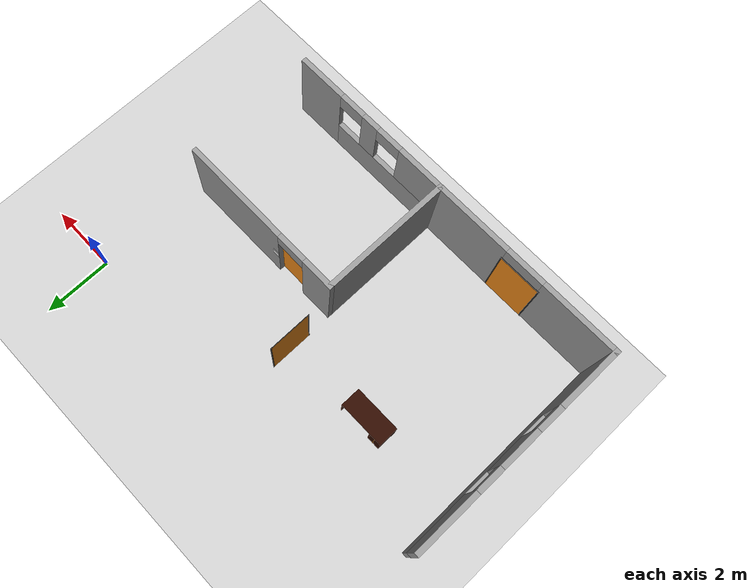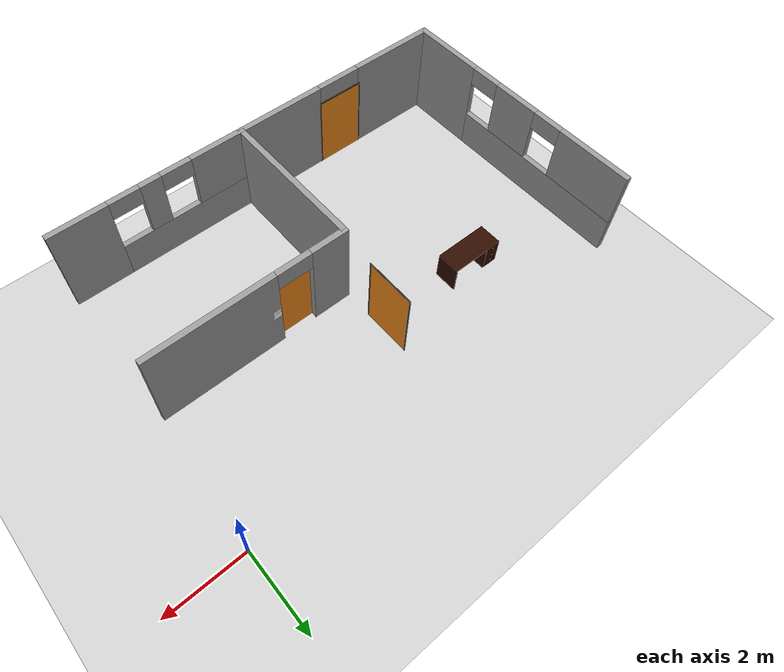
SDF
<sdf version="1.6">
 <world name="default">
  <model name="ground_plane">
   <static>1</static>
   <link name="link">
    <collision name="collision">
     <geometry><plane><normal>0 0 1</normal><size>100 100</size></plane></geometry>
     <surface><friction><ode><mu>100</mu><mu2>50</mu2></ode></friction></surface>
    </collision>
    <visual name="visual">
     <cast_shadows>0</cast_shadows>
     <geometry><plane><normal>0 0 1</normal><size>100 100</size></plane></geometry>
     <material>
      <script><uri>file://media/materials/scripts/gazebo.material</uri><name>Gazebo/Grey</name></script>
     </material>
    </visual>
   </link>
  </model>
  <model name="three_drawer_desk_clone_0">
   <static>1</static>
   <link name="three_drawer_desk">
    <collision name="three_drawer_desk">
     <geometry><mesh><uri>model://three_drawer_desk/meshes/model.dae</uri></mesh></geometry>
    </collision>
    <visual name="three_drawer_desk_mesh">
     <geometry><mesh><uri>model://three_drawer_desk/meshes/model.dae</uri></mesh></geometry>
    </visual>
   </link>
   <pose>-8.08485 -2.2155 0 0 -0 0</pose>
  </model>
  <model name="room_door">
   <link name="base_link">
    <inertial>
     <pose>0 0 1.00051 0 -0 0</pose>
     <mass>2001</mass>
     <inertia><ixx>797.85</ixx><ixy>0</ixy><ixz>0</ixz><iyy>4.0501</iyy><iyz>0</iyz><izz>796.8</izz></inertia>
    </inertial>
    <collision name="base_link_fixed_joint_lump__top_post_collision">
     <pose>0 0 2.025 0 -0 0</pose>
     <geometry><box><size>0.01 1.3 0.05</size></box></geometry>
    </collision>
    <collision name="base_link_fixed_joint_lump__left_post_collision_1">
     <pose>0 -0.63 1 0 -0 0</pose>
     <geometry><box><size>0.01 0.04 2</size></box></geometry>
    </collision>
    <collision name="base_link_fixed_joint_lump__right_post_collision_2">
     <pose>0 0.63 1 0 -0 0</pose>
     <geometry><box><size>0.01 0.04 2</size></box></geometry>
    </collision>
    <visual name="base_link_fixed_joint_lump__top_post_visual">
     <pose>0 0 2.025 0 -0 0</pose>
     <geometry><box><size>0.01 1.3 0.05</size></box></geometry>
     <material>
      <script><name>Gazebo/Black</name><uri>file://media/materials/scripts/gazebo.material</uri></script>
     </material>
    </visual>
    <visual name="base_link_fixed_joint_lump__left_post_visual_1">
     <pose>0 -0.63 1 0 -0 0</pose>
     <geometry><box><size>0.01 0.04 2</size></box></geometry>
     <material>
      <script><name>Gazebo/Black</name><uri>file://media/materials/scripts/gazebo.material</uri></script>
     </material>
    </visual>
    <visual name="base_link_fixed_joint_lump__right_post_visual_2">
     <pose>0 0.63 1 0 -0 0</pose>
     <geometry><box><size>0.01 0.04 2</size></box></geometry>
     <material>
      <script><name>Gazebo/Black</name><uri>file://media/materials/scripts/gazebo.material</uri></script>
     </material>
    </visual>
   </link>
   <link name="door_front">
    <pose>0.005 0.61 1 0 -0 0</pose>
    <inertial>
     <mass>1</mass>
     <inertia><ixx>1</ixx><ixy>0</ixy><ixz>0</ixz><iyy>1</iyy><iyz>0</iyz><izz>1</izz></inertia>
    </inertial>
    <collision name="door_front_collision">
     <pose>-0.005 -0.61 0.005 0 -0 0</pose>
     <geometry><box><size>0.01 1.22 1.99</size></box></geometry>
    </collision>
    <visual name="door_front_visual">
     <pose>-0.005 -0.61 0.005 0 -0 0</pose>
     <geometry><box><size>0.01 1.22 1.99</size></box></geometry>
     <material>
      <script><name>Gazebo/Orange</name><uri>file://media/materials/scripts/gazebo.material</uri></script>
     </material>
    </visual>
   </link>
   <joint name="door_front_to_right_post" type="revolute">
    <child>door_front</child>
    <parent>base_link</parent>
    <axis>
     <xyz>0 0 1</xyz>
     <limit><lower>0</lower><upper>3.14</upper><effort>1000</effort><velocity>100</velocity></limit>
     <dynamics>
      <damping>0.5</damping>
      <friction>0</friction>
      <spring_reference>0</spring_reference>
      <spring_stiffness>0</spring_stiffness>
     </dynamics>
     <use_parent_model_frame>0</use_parent_model_frame>
    </axis>
   </joint>
   <pose>-5.34333 -2.04893 -0 -1e-06 -0 3.14133</pose>
  </model>
  <model name="room_door_2">
   <link name="base_link">
    <inertial>
     <pose>0 0 1.00051 0 -0 0</pose>
     <mass>2001</mass>
     <inertia><ixx>464.85</ixx><ixy>0</ixy><ixz>0</ixz><iyy>4.0501</iyy><iyz>0</iyz><izz>463.8</izz></inertia>
    </inertial>
    <collision name="base_link_fixed_joint_lump__top_post_collision">
     <pose>0 0 2.025 0 -0 0</pose>
     <geometry><box><size>0.01 1 0.05</size></box></geometry>
    </collision>
    <collision name="base_link_fixed_joint_lump__left_post_collision_1">
     <pose>0 -0.48 1 0 -0 0</pose>
     <geometry><box><size>0.01 0.04 2</size></box></geometry>
    </collision>
    <collision name="base_link_fixed_joint_lump__right_post_collision_2">
     <pose>0 0.48 1 0 -0 0</pose>
     <geometry><box><size>0.01 0.04 2</size></box></geometry>
    </collision>
    <visual name="base_link_fixed_joint_lump__top_post_visual">
     <pose>0 0 2.025 0 -0 0</pose>
     <geometry><box><size>0.01 1 0.05</size></box></geometry>
     <material>
      <script><name>Gazebo/Black</name><uri>file://media/materials/scripts/gazebo.material</uri></script>
     </material>
    </visual>
    <visual name="base_link_fixed_joint_lump__left_post_visual_1">
     <pose>0 -0.48 1 0 -0 0</pose>
     <geometry><box><size>0.01 0.04 2</size></box></geometry>
     <material>
      <script><name>Gazebo/Black</name><uri>file://media/materials/scripts/gazebo.material</uri></script>
     </material>
    </visual>
    <visual name="base_link_fixed_joint_lump__right_post_visual_2">
     <pose>0 0.48 1 0 -0 0</pose>
     <geometry><box><size>0.01 0.04 2</size></box></geometry>
     <material>
      <script><name>Gazebo/Black</name><uri>file://media/materials/scripts/gazebo.material</uri></script>
     </material>
    </visual>
   </link>
   <link name="door_front">
    <pose>0.005 0.46 1 0 -0 0</pose>
    <inertial>
     <mass>1</mass>
     <inertia><ixx>1</ixx><ixy>0</ixy><ixz>0</ixz><iyy>1</iyy><iyz>0</iyz><izz>1</izz></inertia>
    </inertial>
    <collision name="door_front_collision">
     <pose>-0.005 -0.46 0.005 0 -0 0</pose>
     <geometry><box><size>0.01 0.92 1.99</size></box></geometry>
    </collision>
    <visual name="door_front_visual">
     <pose>-0.005 -0.46 0.005 0 -0 0</pose>
     <geometry><box><size>0.01 0.92 1.99</size></box></geometry>
     <material>
      <script><name>Gazebo/Orange</name><uri>file://media/materials/scripts/gazebo.material</uri></script>
     </material>
    </visual>
   </link>
   <joint name="door_front_to_right_post" type="revolute">
    <child>door_front</child>
    <parent>base_link</parent>
    <axis>
     <xyz>0 0 1</xyz>
     <limit><lower>0</lower><upper>3.14</upper><effort>1000</effort><velocity>100</velocity></limit>
     <dynamics>
      <damping>0.5</damping>
      <friction>0</friction>
      <spring_reference>0</spring_reference>
      <spring_stiffness>0</spring_stiffness>
     </dynamics>
     <use_parent_model_frame>0</use_parent_model_frame>
    </axis>
   </joint>
   <pose>-3.88747 -3.55038 -0 1e-06 1e-06 -1.57069</pose>
  </model>
  <model name="room_door_6">
   <link name="base_link">
    <inertial>
     <pose>0 0 1.00051 0 -0 0</pose>
     <mass>2001</mass>
     <inertia><ixx>797.85</ixx><ixy>0</ixy><ixz>0</ixz><iyy>4.0501</iyy><iyz>0</iyz><izz>796.8</izz></inertia>
    </inertial>
    <collision name="base_link_fixed_joint_lump__top_post_collision">
     <pose>0 0 2.025 0 -0 0</pose>
     <geometry><box><size>0.01 1.3 0.05</size></box></geometry>
    </collision>
    <collision name="base_link_fixed_joint_lump__left_post_collision_1">
     <pose>0 -0.63 1 0 -0 0</pose>
     <geometry><box><size>0.01 0.04 2</size></box></geometry>
    </collision>
    <collision name="base_link_fixed_joint_lump__right_post_collision_2">
     <pose>0 0.63 1 0 -0 0</pose>
     <geometry><box><size>0.01 0.04 2</size></box></geometry>
    </collision>
    <visual name="base_link_fixed_joint_lump__top_post_visual">
     <pose>0 0 2.025 0 -0 0</pose>
     <geometry><box><size>0.01 1.3 0.05</size></box></geometry>
     <material>
      <script><name>Gazebo/Black</name><uri>file://media/materials/scripts/gazebo.material</uri></script>
     </material>
    </visual>
    <visual name="base_link_fixed_joint_lump__left_post_visual_1">
     <pose>0 -0.63 1 0 -0 0</pose>
     <geometry><box><size>0.01 0.04 2</size></box></geometry>
     <material>
      <script><name>Gazebo/Black</name><uri>file://media/materials/scripts/gazebo.material</uri></script>
     </material>
    </visual>
    <visual name="base_link_fixed_joint_lump__right_post_visual_2">
     <pose>0 0.63 1 0 -0 0</pose>
     <geometry><box><size>0.01 0.04 2</size></box></geometry>
     <material>
      <script><name>Gazebo/Black</name><uri>file://media/materials/scripts/gazebo.material</uri></script>
     </material>
    </visual>
   </link>
   <link name="door_front">
    <pose>0.005 0.61 1 0 -0 0</pose>
    <inertial>
     <mass>1</mass>
     <inertia><ixx>1</ixx><ixy>0</ixy><ixz>0</ixz><iyy>1</iyy><iyz>0</iyz><izz>1</izz></inertia>
    </inertial>
    <collision name="door_front_collision">
     <pose>-0.005 -0.61 0.005 0 -0 0</pose>
     <geometry><box><size>0.01 1.22 1.99</size></box></geometry>
    </collision>
    <visual name="door_front_visual">
     <pose>-0.005 -0.61 0.005 0 -0 0</pose>
     <geometry><box><size>0.01 1.22 1.99</size></box></geometry>
     <material>
      <script><name>Gazebo/Orange</name><uri>file://media/materials/scripts/gazebo.material</uri></script>
     </material>
    </visual>
   </link>
   <joint name="door_front_to_right_post" type="revolute">
    <child>door_front</child>
    <parent>base_link</parent>
    <axis>
     <xyz>0 0 1</xyz>
     <limit><lower>0</lower><upper>3.14</upper><effort>1000</effort><velocity>100</velocity></limit>
     <dynamics>
      <damping>0.5</damping>
      <friction>0</friction>
      <spring_reference>0</spring_reference>
      <spring_stiffness>0</spring_stiffness>
     </dynamics>
     <use_parent_model_frame>0</use_parent_model_frame>
    </axis>
   </joint>
   <pose>-8.19194 -7.24015 -5e-06 1e-06 1e-06 1.57065</pose>
  </model>
  <model name="hospital_walls">
   <link name="Wall_49">
    <pose>-5.275 -5.35 0 0 0 -1.5708</pose>
    <visual name="Wall_49_Visual">
     <pose>0 0 1.25 0 -0 0</pose>
     <geometry><box><size>4 0.15 2.5</size></box></geometry>
     <material>
      <script><uri>file://media/materials/scripts/gazebo.material</uri><name>Gazebo/Grey</name></script>
      <ambient>1 1 1 1</ambient>
      <shader type="pixel"/>
     </material>
     <meta><layer>0</layer></meta>
    </visual>
    <collision name="Wall_49_Collision">
     <pose>0 0 1.25 0 -0 0</pose>
     <geometry><box><size>4 0.15 2.5</size></box></geometry>
     <surface>
      <friction>
       <ode><mu>1</mu><mu2>1</mu2><fdir1>0 0 0</fdir1><slip1>0</slip1><slip2>0</slip2></ode>
       <torsional>
        <coefficient>1</coefficient>
        <patch_radius>0</patch_radius>
        <surface_radius>0</surface_radius>
        <use_patch_radius>1</use_patch_radius>
        <ode><slip>0</slip></ode>
       </torsional>
      </friction>
      <bounce><restitution_coefficient>0</restitution_coefficient><threshold>1e+06</threshold></bounce>
      <contact>
       <collide_without_contact>0</collide_without_contact>
       <collide_without_contact_bitmask>1</collide_without_contact_bitmask>
       <collide_bitmask>1</collide_bitmask>
       <ode>
        <soft_cfm>0</soft_cfm>
        <soft_erp>0.2</soft_erp>
        <kp>1e+13</kp>
        <kd>1</kd>
        <max_vel>0.01</max_vel>
        <min_depth>0</min_depth>
       </ode>
       <bullet>
        <split_impulse>1</split_impulse>
        <split_impulse_penetration_threshold>-0.01</split_impulse_penetration_threshold>
        <soft_cfm>0</soft_cfm>
        <soft_erp>0.2</soft_erp>
        <kp>1e+13</kp>
        <kd>1</kd>
       </bullet>
      </contact>
     </surface>
    </collision>
   </link>
   <link name="Wall_51">
    <pose>-11.125 -3.925 0 0 -0 1.5708</pose>
    <inertial>
     <mass>1</mass>
     <inertia><ixx>1</ixx><ixy>0</ixy><ixz>0</ixz><iyy>1</iyy><iyz>0</iyz><izz>1</izz></inertia>
    </inertial>
    <visual name="Wall_51_Visual_0">
     <pose>-2.425 0 1.25 0 -0 0</pose>
     <geometry><box><size>2 0.15 2.5</size></box></geometry>
     <material>
      <script><uri>file://media/materials/scripts/gazebo.material</uri><name>Gazebo/Grey</name></script>
      <ambient>1 1 1 1</ambient>
      <shader type="vertex"><normal_map>__default__</normal_map></shader>
      <diffuse>0.7 0.7 0.7 1</diffuse>
      <specular>0.01 0.01 0.01 1</specular>
      <emissive>0 0 0 1</emissive>
     </material>
     <meta><layer>0</layer></meta>
    </visual>
    <visual name="Wall_51_Visual_3">
     <pose>2.425 0 1.75 0 -0 0</pose>
     <geometry><box><size>2 0.15 1.5</size></box></geometry>
     <material>
      <script><uri>file://media/materials/scripts/gazebo.material</uri><name>Gazebo/Grey</name></script>
      <ambient>1 1 1 1</ambient>
      <shader type="vertex"><normal_map>__default__</normal_map></shader>
      <diffuse>0.7 0.7 0.7 1</diffuse>
      <specular>0.01 0.01 0.01 1</specular>
      <emissive>0 0 0 1</emissive>
     </material>
     <meta><layer>0</layer></meta>
    </visual>
    <visual name="Wall_51_Visual_1">
     <pose>1 0 0.5 0 -0 0</pose>
     <geometry><box><size>4.85 0.15 1</size></box></geometry>
     <material>
      <script><uri>file://media/materials/scripts/gazebo.material</uri><name>Gazebo/Grey</name></script>
      <ambient>1 1 1 1</ambient>
      <shader type="vertex"><normal_map>__default__</normal_map></shader>
      <diffuse>0.7 0.7 0.7 1</diffuse>
      <specular>0.01 0.01 0.01 1</specular>
      <emissive>0 0 0 1</emissive>
     </material>
     <meta><layer>0</layer></meta>
    </visual>
    <visual name="Wall_51_Visual_5">
     <pose>1.025 0 2.25 0 -0 0</pose>
     <geometry><box><size>0.8 0.15 0.5</size></box></geometry>
     <material>
      <script><uri>file://media/materials/scripts/gazebo.material</uri><name>Gazebo/Grey</name></script>
      <ambient>1 1 1 1</ambient>
      <shader type="vertex"><normal_map>__default__</normal_map></shader>
      <diffuse>0.7 0.7 0.7 1</diffuse>
      <specular>0.01 0.01 0.01 1</specular>
      <emissive>0 0 0 1</emissive>
     </material>
     <meta><layer>0</layer></meta>
    </visual>
    <visual name="Wall_51_Visual_2">
     <pose>0 0 1.75 0 -0 0</pose>
     <geometry><box><size>1.25 0.15 1.5</size></box></geometry>
     <material>
      <script><uri>file://media/materials/scripts/gazebo.material</uri><name>Gazebo/Grey</name></script>
      <ambient>1 1 1 1</ambient>
      <shader type="vertex"><normal_map>__default__</normal_map></shader>
      <diffuse>0.7 0.7 0.7 1</diffuse>
      <specular>0.01 0.01 0.01 1</specular>
      <emissive>0 0 0 1</emissive>
     </material>
     <meta><layer>0</layer></meta>
    </visual>
    <visual name="Wall_51_Visual_4">
     <pose>-1.025 0 2.25 0 -0 0</pose>
     <geometry><box><size>0.8 0.15 0.5</size></box></geometry>
     <material>
      <script><uri>file://media/materials/scripts/gazebo.material</uri><name>Gazebo/Grey</name></script>
      <ambient>1 1 1 1</ambient>
      <shader type="vertex"><normal_map>__default__</normal_map></shader>
      <diffuse>0.7 0.7 0.7 1</diffuse>
      <specular>0.01 0.01 0.01 1</specular>
      <emissive>0 0 0 1</emissive>
     </material>
     <meta><layer>0</layer></meta>
    </visual>
    <collision name="Wall_51_Collision_1">
     <pose>1 0 0.5 0 -0 0</pose>
     <geometry><box><size>4.85 0.15 1</size></box></geometry>
     <surface>
      <friction>
       <ode><mu>1</mu><mu2>1</mu2><fdir1>0 0 0</fdir1><slip1>0</slip1><slip2>0</slip2></ode>
       <torsional>
        <coefficient>1</coefficient>
        <patch_radius>0</patch_radius>
        <surface_radius>0</surface_radius>
        <use_patch_radius>1</use_patch_radius>
        <ode><slip>0</slip></ode>
       </torsional>
      </friction>
      <bounce><restitution_coefficient>0</restitution_coefficient><threshold>1e+06</threshold></bounce>
      <contact>
       <collide_without_contact>0</collide_without_contact>
       <collide_without_contact_bitmask>1</collide_without_contact_bitmask>
       <collide_bitmask>1</collide_bitmask>
       <ode>
        <soft_cfm>0</soft_cfm>
        <soft_erp>0.2</soft_erp>
        <kp>1e+13</kp>
        <kd>1</kd>
        <max_vel>0.01</max_vel>
        <min_depth>0</min_depth>
       </ode>
       <bullet>
        <split_impulse>1</split_impulse>
        <split_impulse_penetration_threshold>-0.01</split_impulse_penetration_threshold>
        <soft_cfm>0</soft_cfm>
        <soft_erp>0.2</soft_erp>
        <kp>1e+13</kp>
        <kd>1</kd>
       </bullet>
      </contact>
     </surface>
    </collision>
    <collision name="Wall_51_Collision_3">
     <pose>2.425 0 1.75 0 -0 0</pose>
     <geometry><box><size>2 0.15 1.5</size></box></geometry>
     <surface>
      <friction>
       <ode><mu>1</mu><mu2>1</mu2><fdir1>0 0 0</fdir1><slip1>0</slip1><slip2>0</slip2></ode>
       <torsional>
        <coefficient>1</coefficient>
        <patch_radius>0</patch_radius>
        <surface_radius>0</surface_radius>
        <use_patch_radius>1</use_patch_radius>
        <ode><slip>0</slip></ode>
       </torsional>
      </friction>
      <bounce><restitution_coefficient>0</restitution_coefficient><threshold>1e+06</threshold></bounce>
      <contact>
       <collide_without_contact>0</collide_without_contact>
       <collide_without_contact_bitmask>1</collide_without_contact_bitmask>
       <collide_bitmask>1</collide_bitmask>
       <ode>
        <soft_cfm>0</soft_cfm>
        <soft_erp>0.2</soft_erp>
        <kp>1e+13</kp>
        <kd>1</kd>
        <max_vel>0.01</max_vel>
        <min_depth>0</min_depth>
       </ode>
       <bullet>
        <split_impulse>1</split_impulse>
        <split_impulse_penetration_threshold>-0.01</split_impulse_penetration_threshold>
        <soft_cfm>0</soft_cfm>
        <soft_erp>0.2</soft_erp>
        <kp>1e+13</kp>
        <kd>1</kd>
       </bullet>
      </contact>
     </surface>
    </collision>
    <collision name="Wall_51_Collision_2">
     <pose>0 0 1.75 0 -0 0</pose>
     <geometry><box><size>1.25 0.15 1.5</size></box></geometry>
     <surface>
      <friction>
       <ode><mu>1</mu><mu2>1</mu2><fdir1>0 0 0</fdir1><slip1>0</slip1><slip2>0</slip2></ode>
       <torsional>
        <coefficient>1</coefficient>
        <patch_radius>0</patch_radius>
        <surface_radius>0</surface_radius>
        <use_patch_radius>1</use_patch_radius>
        <ode><slip>0</slip></ode>
       </torsional>
      </friction>
      <bounce><restitution_coefficient>0</restitution_coefficient><threshold>1e+06</threshold></bounce>
      <contact>
       <collide_without_contact>0</collide_without_contact>
       <collide_without_contact_bitmask>1</collide_without_contact_bitmask>
       <collide_bitmask>1</collide_bitmask>
       <ode>
        <soft_cfm>0</soft_cfm>
        <soft_erp>0.2</soft_erp>
        <kp>1e+13</kp>
        <kd>1</kd>
        <max_vel>0.01</max_vel>
        <min_depth>0</min_depth>
       </ode>
       <bullet>
        <split_impulse>1</split_impulse>
        <split_impulse_penetration_threshold>-0.01</split_impulse_penetration_threshold>
        <soft_cfm>0</soft_cfm>
        <soft_erp>0.2</soft_erp>
        <kp>1e+13</kp>
        <kd>1</kd>
       </bullet>
      </contact>
     </surface>
    </collision>
    <collision name="Wall_51_Collision_0">
     <pose>-2.425 0 1.25 0 -0 0</pose>
     <geometry><box><size>2 0.15 2.5</size></box></geometry>
     <surface>
      <friction>
       <ode><mu>1</mu><mu2>1</mu2><fdir1>0 0 0</fdir1><slip1>0</slip1><slip2>0</slip2></ode>
       <torsional>
        <coefficient>1</coefficient>
        <patch_radius>0</patch_radius>
        <surface_radius>0</surface_radius>
        <use_patch_radius>1</use_patch_radius>
        <ode><slip>0</slip></ode>
       </torsional>
      </friction>
      <bounce><restitution_coefficient>0</restitution_coefficient><threshold>1e+06</threshold></bounce>
      <contact>
       <collide_without_contact>0</collide_without_contact>
       <collide_without_contact_bitmask>1</collide_without_contact_bitmask>
       <collide_bitmask>1</collide_bitmask>
       <ode>
        <soft_cfm>0</soft_cfm>
        <soft_erp>0.2</soft_erp>
        <kp>1e+13</kp>
        <kd>1</kd>
        <max_vel>0.01</max_vel>
        <min_depth>0</min_depth>
       </ode>
       <bullet>
        <split_impulse>1</split_impulse>
        <split_impulse_penetration_threshold>-0.01</split_impulse_penetration_threshold>
        <soft_cfm>0</soft_cfm>
        <soft_erp>0.2</soft_erp>
        <kp>1e+13</kp>
        <kd>1</kd>
       </bullet>
      </contact>
     </surface>
    </collision>
    <collision name="Wall_51_Collision_5">
     <pose>1.025 0 2.25 0 -0 0</pose>
     <geometry><box><size>0.8 0.15 0.5</size></box></geometry>
     <surface>
      <friction>
       <ode><mu>1</mu><mu2>1</mu2><fdir1>0 0 0</fdir1><slip1>0</slip1><slip2>0</slip2></ode>
       <torsional>
        <coefficient>1</coefficient>
        <patch_radius>0</patch_radius>
        <surface_radius>0</surface_radius>
        <use_patch_radius>1</use_patch_radius>
        <ode><slip>0</slip></ode>
       </torsional>
      </friction>
      <bounce><restitution_coefficient>0</restitution_coefficient><threshold>1e+06</threshold></bounce>
      <contact>
       <collide_without_contact>0</collide_without_contact>
       <collide_without_contact_bitmask>1</collide_without_contact_bitmask>
       <collide_bitmask>1</collide_bitmask>
       <ode>
        <soft_cfm>0</soft_cfm>
        <soft_erp>0.2</soft_erp>
        <kp>1e+13</kp>
        <kd>1</kd>
        <max_vel>0.01</max_vel>
        <min_depth>0</min_depth>
       </ode>
       <bullet>
        <split_impulse>1</split_impulse>
        <split_impulse_penetration_threshold>-0.01</split_impulse_penetration_threshold>
        <soft_cfm>0</soft_cfm>
        <soft_erp>0.2</soft_erp>
        <kp>1e+13</kp>
        <kd>1</kd>
       </bullet>
      </contact>
     </surface>
    </collision>
    <collision name="Wall_51_Collision_4">
     <pose>-1.025 0 2.25 0 -0 0</pose>
     <geometry><box><size>0.8 0.15 0.5</size></box></geometry>
     <surface>
      <friction>
       <ode><mu>1</mu><mu2>1</mu2><fdir1>0 0 0</fdir1><slip1>0</slip1><slip2>0</slip2></ode>
       <torsional>
        <coefficient>1</coefficient>
        <patch_radius>0</patch_radius>
        <surface_radius>0</surface_radius>
        <use_patch_radius>1</use_patch_radius>
        <ode><slip>0</slip></ode>
       </torsional>
      </friction>
      <bounce><restitution_coefficient>0</restitution_coefficient><threshold>1e+06</threshold></bounce>
      <contact>
       <collide_without_contact>0</collide_without_contact>
       <collide_without_contact_bitmask>1</collide_without_contact_bitmask>
       <collide_bitmask>1</collide_bitmask>
       <ode>
        <soft_cfm>0</soft_cfm>
        <soft_erp>0.2</soft_erp>
        <kp>1e+13</kp>
        <kd>1</kd>
        <max_vel>0.01</max_vel>
        <min_depth>0</min_depth>
       </ode>
       <bullet>
        <split_impulse>1</split_impulse>
        <split_impulse_penetration_threshold>-0.01</split_impulse_penetration_threshold>
        <soft_cfm>0</soft_cfm>
        <soft_erp>0.2</soft_erp>
        <kp>1e+13</kp>
        <kd>1</kd>
       </bullet>
      </contact>
     </surface>
    </collision>
   </link>
   <link name="Wall_53">
    <pose>-2.775 -7.275 0 0 -0 3.14159</pose>
    <inertial>
     <mass>1</mass>
     <inertia><ixx>1</ixx><ixy>0</ixy><ixz>0</ixz><iyy>1</iyy><iyz>0</iyz><izz>1</izz></inertia>
    </inertial>
    <visual name="Wall_53_Visual_2">
     <pose>0 0 1.75 0 -0 0</pose>
     <geometry><box><size>0.55 0.15 1.5</size></box></geometry>
     <material>
      <script><uri>file://media/materials/scripts/gazebo.material</uri><name>Gazebo/Grey</name></script>
      <ambient>1 1 1 1</ambient>
      <shader type="vertex"><normal_map>__default__</normal_map></shader>
      <diffuse>0.7 0.7 0.7 1</diffuse>
      <specular>0.01 0.01 0.01 1</specular>
      <emissive>0 0 0 1</emissive>
     </material>
     <meta><layer>0</layer></meta>
    </visual>
    <visual name="Wall_53_Visual_1">
     <pose>0.75 0 0.5 0 -0 0</pose>
     <geometry><box><size>3.65 0.15 1</size></box></geometry>
     <material>
      <script><uri>file://media/materials/scripts/gazebo.material</uri><name>Gazebo/Grey</name></script>
      <ambient>1 1 1 1</ambient>
      <shader type="vertex"><normal_map>__default__</normal_map></shader>
      <diffuse>0.7 0.7 0.7 1</diffuse>
      <specular>0.01 0.01 0.01 1</specular>
      <emissive>0 0 0 1</emissive>
     </material>
     <meta><layer>0</layer></meta>
    </visual>
    <visual name="Wall_53_Visual_5">
     <pose>0.675 0 2.25 0 -0 0</pose>
     <geometry><box><size>0.8 0.15 0.5</size></box></geometry>
     <material>
      <script><uri>file://media/materials/scripts/gazebo.material</uri><name>Gazebo/Grey</name></script>
      <ambient>1 1 1 1</ambient>
      <shader type="vertex"><normal_map>__default__</normal_map></shader>
      <diffuse>0.7 0.7 0.7 1</diffuse>
      <specular>0.01 0.01 0.01 1</specular>
      <emissive>0 0 0 1</emissive>
     </material>
     <meta><layer>0</layer></meta>
    </visual>
    <visual name="Wall_53_Visual_0">
     <pose>-1.825 0 1.25 0 -0 0</pose>
     <geometry><box><size>1.5 0.15 2.5</size></box></geometry>
     <material>
      <script><uri>file://media/materials/scripts/gazebo.material</uri><name>Gazebo/Grey</name></script>
      <ambient>1 1 1 1</ambient>
      <shader type="vertex"><normal_map>__default__</normal_map></shader>
      <diffuse>0.7 0.7 0.7 1</diffuse>
      <specular>0.01 0.01 0.01 1</specular>
      <emissive>0 0 0 1</emissive>
     </material>
     <meta><layer>0</layer></meta>
    </visual>
    <visual name="Wall_53_Visual_4">
     <pose>-0.675 0 2.25 0 -0 0</pose>
     <geometry><box><size>0.8 0.15 0.5</size></box></geometry>
     <material>
      <script><uri>file://media/materials/scripts/gazebo.material</uri><name>Gazebo/Grey</name></script>
      <ambient>1 1 1 1</ambient>
      <shader type="vertex"><normal_map>__default__</normal_map></shader>
      <diffuse>0.7 0.7 0.7 1</diffuse>
      <specular>0.01 0.01 0.01 1</specular>
      <emissive>0 0 0 1</emissive>
     </material>
     <meta><layer>0</layer></meta>
    </visual>
    <visual name="Wall_53_Visual_3">
     <pose>1.825 0 1.75 0 -0 0</pose>
     <geometry><box><size>1.5 0.15 1.5</size></box></geometry>
     <material>
      <script><uri>file://media/materials/scripts/gazebo.material</uri><name>Gazebo/Grey</name></script>
      <ambient>1 1 1 1</ambient>
      <shader type="vertex"><normal_map>__default__</normal_map></shader>
      <diffuse>0.7 0.7 0.7 1</diffuse>
      <specular>0.01 0.01 0.01 1</specular>
      <emissive>0 0 0 1</emissive>
     </material>
     <meta><layer>0</layer></meta>
    </visual>
    <collision name="Wall_53_Collision_2">
     <pose>0 0 1.75 0 -0 0</pose>
     <geometry><box><size>0.55 0.15 1.5</size></box></geometry>
     <surface>
      <friction>
       <ode><mu>1</mu><mu2>1</mu2><fdir1>0 0 0</fdir1><slip1>0</slip1><slip2>0</slip2></ode>
       <torsional>
        <coefficient>1</coefficient>
        <patch_radius>0</patch_radius>
        <surface_radius>0</surface_radius>
        <use_patch_radius>1</use_patch_radius>
        <ode><slip>0</slip></ode>
       </torsional>
      </friction>
      <bounce><restitution_coefficient>0</restitution_coefficient><threshold>1e+06</threshold></bounce>
      <contact>
       <collide_without_contact>0</collide_without_contact>
       <collide_without_contact_bitmask>1</collide_without_contact_bitmask>
       <collide_bitmask>1</collide_bitmask>
       <ode>
        <soft_cfm>0</soft_cfm>
        <soft_erp>0.2</soft_erp>
        <kp>1e+13</kp>
        <kd>1</kd>
        <max_vel>0.01</max_vel>
        <min_depth>0</min_depth>
       </ode>
       <bullet>
        <split_impulse>1</split_impulse>
        <split_impulse_penetration_threshold>-0.01</split_impulse_penetration_threshold>
        <soft_cfm>0</soft_cfm>
        <soft_erp>0.2</soft_erp>
        <kp>1e+13</kp>
        <kd>1</kd>
       </bullet>
      </contact>
     </surface>
    </collision>
    <collision name="Wall_53_Collision_1">
     <pose>0.75 0 0.5 0 -0 0</pose>
     <geometry><box><size>3.65 0.15 1</size></box></geometry>
     <surface>
      <friction>
       <ode><mu>1</mu><mu2>1</mu2><fdir1>0 0 0</fdir1><slip1>0</slip1><slip2>0</slip2></ode>
       <torsional>
        <coefficient>1</coefficient>
        <patch_radius>0</patch_radius>
        <surface_radius>0</surface_radius>
        <use_patch_radius>1</use_patch_radius>
        <ode><slip>0</slip></ode>
       </torsional>
      </friction>
      <bounce><restitution_coefficient>0</restitution_coefficient><threshold>1e+06</threshold></bounce>
      <contact>
       <collide_without_contact>0</collide_without_contact>
       <collide_without_contact_bitmask>1</collide_without_contact_bitmask>
       <collide_bitmask>1</collide_bitmask>
       <ode>
        <soft_cfm>0</soft_cfm>
        <soft_erp>0.2</soft_erp>
        <kp>1e+13</kp>
        <kd>1</kd>
        <max_vel>0.01</max_vel>
        <min_depth>0</min_depth>
       </ode>
       <bullet>
        <split_impulse>1</split_impulse>
        <split_impulse_penetration_threshold>-0.01</split_impulse_penetration_threshold>
        <soft_cfm>0</soft_cfm>
        <soft_erp>0.2</soft_erp>
        <kp>1e+13</kp>
        <kd>1</kd>
       </bullet>
      </contact>
     </surface>
    </collision>
    <collision name="Wall_53_Collision_3">
     <pose>1.825 0 1.75 0 -0 0</pose>
     <geometry><box><size>1.5 0.15 1.5</size></box></geometry>
     <surface>
      <friction>
       <ode><mu>1</mu><mu2>1</mu2><fdir1>0 0 0</fdir1><slip1>0</slip1><slip2>0</slip2></ode>
       <torsional>
        <coefficient>1</coefficient>
        <patch_radius>0</patch_radius>
        <surface_radius>0</surface_radius>
        <use_patch_radius>1</use_patch_radius>
        <ode><slip>0</slip></ode>
       </torsional>
      </friction>
      <bounce><restitution_coefficient>0</restitution_coefficient><threshold>1e+06</threshold></bounce>
      <contact>
       <collide_without_contact>0</collide_without_contact>
       <collide_without_contact_bitmask>1</collide_without_contact_bitmask>
       <collide_bitmask>1</collide_bitmask>
       <ode>
        <soft_cfm>0</soft_cfm>
        <soft_erp>0.2</soft_erp>
        <kp>1e+13</kp>
        <kd>1</kd>
        <max_vel>0.01</max_vel>
        <min_depth>0</min_depth>
       </ode>
       <bullet>
        <split_impulse>1</split_impulse>
        <split_impulse_penetration_threshold>-0.01</split_impulse_penetration_threshold>
        <soft_cfm>0</soft_cfm>
        <soft_erp>0.2</soft_erp>
        <kp>1e+13</kp>
        <kd>1</kd>
       </bullet>
      </contact>
     </surface>
    </collision>
    <collision name="Wall_53_Collision_5">
     <pose>0.675 0 2.25 0 -0 0</pose>
     <geometry><box><size>0.8 0.15 0.5</size></box></geometry>
     <surface>
      <friction>
       <ode><mu>1</mu><mu2>1</mu2><fdir1>0 0 0</fdir1><slip1>0</slip1><slip2>0</slip2></ode>
       <torsional>
        <coefficient>1</coefficient>
        <patch_radius>0</patch_radius>
        <surface_radius>0</surface_radius>
        <use_patch_radius>1</use_patch_radius>
        <ode><slip>0</slip></ode>
       </torsional>
      </friction>
      <bounce><restitution_coefficient>0</restitution_coefficient><threshold>1e+06</threshold></bounce>
      <contact>
       <collide_without_contact>0</collide_without_contact>
       <collide_without_contact_bitmask>1</collide_without_contact_bitmask>
       <collide_bitmask>1</collide_bitmask>
       <ode>
        <soft_cfm>0</soft_cfm>
        <soft_erp>0.2</soft_erp>
        <kp>1e+13</kp>
        <kd>1</kd>
        <max_vel>0.01</max_vel>
        <min_depth>0</min_depth>
       </ode>
       <bullet>
        <split_impulse>1</split_impulse>
        <split_impulse_penetration_threshold>-0.01</split_impulse_penetration_threshold>
        <soft_cfm>0</soft_cfm>
        <soft_erp>0.2</soft_erp>
        <kp>1e+13</kp>
        <kd>1</kd>
       </bullet>
      </contact>
     </surface>
    </collision>
    <collision name="Wall_53_Collision_4">
     <pose>-0.675 0 2.25 0 -0 0</pose>
     <geometry><box><size>0.8 0.15 0.5</size></box></geometry>
     <surface>
      <friction>
       <ode><mu>1</mu><mu2>1</mu2><fdir1>0 0 0</fdir1><slip1>0</slip1><slip2>0</slip2></ode>
       <torsional>
        <coefficient>1</coefficient>
        <patch_radius>0</patch_radius>
        <surface_radius>0</surface_radius>
        <use_patch_radius>1</use_patch_radius>
        <ode><slip>0</slip></ode>
       </torsional>
      </friction>
      <bounce><restitution_coefficient>0</restitution_coefficient><threshold>1e+06</threshold></bounce>
      <contact>
       <collide_without_contact>0</collide_without_contact>
       <collide_without_contact_bitmask>1</collide_without_contact_bitmask>
       <collide_bitmask>1</collide_bitmask>
       <ode>
        <soft_cfm>0</soft_cfm>
        <soft_erp>0.2</soft_erp>
        <kp>1e+13</kp>
        <kd>1</kd>
        <max_vel>0.01</max_vel>
        <min_depth>0</min_depth>
       </ode>
       <bullet>
        <split_impulse>1</split_impulse>
        <split_impulse_penetration_threshold>-0.01</split_impulse_penetration_threshold>
        <soft_cfm>0</soft_cfm>
        <soft_erp>0.2</soft_erp>
        <kp>1e+13</kp>
        <kd>1</kd>
       </bullet>
      </contact>
     </surface>
    </collision>
    <collision name="Wall_53_Collision_0">
     <pose>-1.825 0 1.25 0 -0 0</pose>
     <geometry><box><size>1.5 0.15 2.5</size></box></geometry>
     <surface>
      <friction>
       <ode><mu>1</mu><mu2>1</mu2><fdir1>0 0 0</fdir1><slip1>0</slip1><slip2>0</slip2></ode>
       <torsional>
        <coefficient>1</coefficient>
        <patch_radius>0</patch_radius>
        <surface_radius>0</surface_radius>
        <use_patch_radius>1</use_patch_radius>
        <ode><slip>0</slip></ode>
       </torsional>
      </friction>
      <bounce><restitution_coefficient>0</restitution_coefficient><threshold>1e+06</threshold></bounce>
      <contact>
       <collide_without_contact>0</collide_without_contact>
       <collide_without_contact_bitmask>1</collide_without_contact_bitmask>
       <collide_bitmask>1</collide_bitmask>
       <ode>
        <soft_cfm>0</soft_cfm>
        <soft_erp>0.2</soft_erp>
        <kp>1e+13</kp>
        <kd>1</kd>
        <max_vel>0.01</max_vel>
        <min_depth>0</min_depth>
       </ode>
       <bullet>
        <split_impulse>1</split_impulse>
        <split_impulse_penetration_threshold>-0.01</split_impulse_penetration_threshold>
        <soft_cfm>0</soft_cfm>
        <soft_erp>0.2</soft_erp>
        <kp>1e+13</kp>
        <kd>1</kd>
       </bullet>
      </contact>
     </surface>
    </collision>
   </link>
   <link name="Wall_55">
    <pose>-2.775 -3.425 0 0 -0 3.14159</pose>
    <visual name="Wall_55_Visual_1">
     <pose>2.075 0 1.25 0 -0 0</pose>
     <geometry><box><size>1 0.15 2.5</size></box></geometry>
     <material>
      <script><uri>file://media/materials/scripts/gazebo.material</uri><name>Gazebo/Grey</name></script>
      <ambient>1 1 1 1</ambient>
      <shader type="pixel"/>
     </material>
     <meta><layer>0</layer></meta>
    </visual>
    <visual name="Wall_55_Visual_0">
     <pose>-0.95 0 1.25 0 -0 0</pose>
     <geometry><box><size>3.25 0.15 2.5</size></box></geometry>
     <material>
      <script><uri>file://media/materials/scripts/gazebo.material</uri><name>Gazebo/Grey</name></script>
      <ambient>1 1 1 1</ambient>
      <shader type="pixel"/>
     </material>
     <meta><layer>0</layer></meta>
    </visual>
    <visual name="Wall_55_Visual_2">
     <pose>1.125 0 2.25 0 -0 0</pose>
     <geometry><box><size>0.9 0.15 0.5</size></box></geometry>
     <material>
      <script><uri>file://media/materials/scripts/gazebo.material</uri><name>Gazebo/Grey</name></script>
      <ambient>1 1 1 1</ambient>
      <shader type="pixel"/>
     </material>
     <meta><layer>0</layer></meta>
    </visual>
    <collision name="Wall_55_Collision_2">
     <pose>1.125 0 2.25 0 -0 0</pose>
     <geometry><box><size>0.9 0.15 0.5</size></box></geometry>
     <surface>
      <friction>
       <ode><mu>1</mu><mu2>1</mu2><fdir1>0 0 0</fdir1><slip1>0</slip1><slip2>0</slip2></ode>
       <torsional>
        <coefficient>1</coefficient>
        <patch_radius>0</patch_radius>
        <surface_radius>0</surface_radius>
        <use_patch_radius>1</use_patch_radius>
        <ode><slip>0</slip></ode>
       </torsional>
      </friction>
      <bounce><restitution_coefficient>0</restitution_coefficient><threshold>1e+06</threshold></bounce>
      <contact>
       <collide_without_contact>0</collide_without_contact>
       <collide_without_contact_bitmask>1</collide_without_contact_bitmask>
       <collide_bitmask>1</collide_bitmask>
       <ode>
        <soft_cfm>0</soft_cfm>
        <soft_erp>0.2</soft_erp>
        <kp>1e+13</kp>
        <kd>1</kd>
        <max_vel>0.01</max_vel>
        <min_depth>0</min_depth>
       </ode>
       <bullet>
        <split_impulse>1</split_impulse>
        <split_impulse_penetration_threshold>-0.01</split_impulse_penetration_threshold>
        <soft_cfm>0</soft_cfm>
        <soft_erp>0.2</soft_erp>
        <kp>1e+13</kp>
        <kd>1</kd>
       </bullet>
      </contact>
     </surface>
    </collision>
    <collision name="Wall_55_Collision_0">
     <pose>-0.95 0 1.25 0 -0 0</pose>
     <geometry><box><size>3.25 0.15 2.5</size></box></geometry>
     <surface>
      <friction>
       <ode><mu>1</mu><mu2>1</mu2><fdir1>0 0 0</fdir1><slip1>0</slip1><slip2>0</slip2></ode>
       <torsional>
        <coefficient>1</coefficient>
        <patch_radius>0</patch_radius>
        <surface_radius>0</surface_radius>
        <use_patch_radius>1</use_patch_radius>
        <ode><slip>0</slip></ode>
       </torsional>
      </friction>
      <bounce><restitution_coefficient>0</restitution_coefficient><threshold>1e+06</threshold></bounce>
      <contact>
       <collide_without_contact>0</collide_without_contact>
       <collide_without_contact_bitmask>1</collide_without_contact_bitmask>
       <collide_bitmask>1</collide_bitmask>
       <ode>
        <soft_cfm>0</soft_cfm>
        <soft_erp>0.2</soft_erp>
        <kp>1e+13</kp>
        <kd>1</kd>
        <max_vel>0.01</max_vel>
        <min_depth>0</min_depth>
       </ode>
       <bullet>
        <split_impulse>1</split_impulse>
        <split_impulse_penetration_threshold>-0.01</split_impulse_penetration_threshold>
        <soft_cfm>0</soft_cfm>
        <soft_erp>0.2</soft_erp>
        <kp>1e+13</kp>
        <kd>1</kd>
       </bullet>
      </contact>
     </surface>
    </collision>
    <collision name="Wall_55_Collision_1">
     <pose>2.075 0 1.25 0 -0 0</pose>
     <geometry><box><size>1 0.15 2.5</size></box></geometry>
     <surface>
      <friction>
       <ode><mu>1</mu><mu2>1</mu2><fdir1>0 0 0</fdir1><slip1>0</slip1><slip2>0</slip2></ode>
       <torsional>
        <coefficient>1</coefficient>
        <patch_radius>0</patch_radius>
        <surface_radius>0</surface_radius>
        <use_patch_radius>1</use_patch_radius>
        <ode><slip>0</slip></ode>
       </torsional>
      </friction>
      <bounce><restitution_coefficient>0</restitution_coefficient><threshold>1e+06</threshold></bounce>
      <contact>
       <collide_without_contact>0</collide_without_contact>
       <collide_without_contact_bitmask>1</collide_without_contact_bitmask>
       <collide_bitmask>1</collide_bitmask>
       <ode>
        <soft_cfm>0</soft_cfm>
        <soft_erp>0.2</soft_erp>
        <kp>1e+13</kp>
        <kd>1</kd>
        <max_vel>0.01</max_vel>
        <min_depth>0</min_depth>
       </ode>
       <bullet>
        <split_impulse>1</split_impulse>
        <split_impulse_penetration_threshold>-0.01</split_impulse_penetration_threshold>
        <soft_cfm>0</soft_cfm>
        <soft_erp>0.2</soft_erp>
        <kp>1e+13</kp>
        <kd>1</kd>
       </bullet>
      </contact>
     </surface>
    </collision>
   </link>
   <link name="Wall_59">
    <pose>-8.2 -7.275 0 0 -0 0</pose>
    <visual name="Wall_59_Visual_1">
     <pose>1.8 0 1.25 0 -0 0</pose>
     <geometry><box><size>2.4 0.15 2.5</size></box></geometry>
     <material>
      <script><uri>file://media/materials/scripts/gazebo.material</uri><name>Gazebo/Grey</name></script>
      <ambient>1 1 1 1</ambient>
      <shader type="pixel"/>
     </material>
     <meta><layer>0</layer></meta>
    </visual>
    <visual name="Wall_59_Visual_0">
     <pose>-1.8 0 1.25 0 -0 0</pose>
     <geometry><box><size>2.4 0.15 2.5</size></box></geometry>
     <material>
      <script><uri>file://media/materials/scripts/gazebo.material</uri><name>Gazebo/Grey</name></script>
      <ambient>1 1 1 1</ambient>
      <shader type="pixel"/>
     </material>
     <meta><layer>0</layer></meta>
    </visual>
    <visual name="Wall_59_Visual_2">
     <pose>0 0 2.25 0 -0 0</pose>
     <geometry><box><size>1.2 0.15 0.5</size></box></geometry>
     <material>
      <script><uri>file://media/materials/scripts/gazebo.material</uri><name>Gazebo/Grey</name></script>
      <ambient>1 1 1 1</ambient>
      <shader type="pixel"/>
     </material>
     <meta><layer>0</layer></meta>
    </visual>
    <collision name="Wall_59_Collision_0">
     <pose>-1.8 0 1.25 0 -0 0</pose>
     <geometry><box><size>2.4 0.15 2.5</size></box></geometry>
     <surface>
      <friction>
       <ode><mu>1</mu><mu2>1</mu2><fdir1>0 0 0</fdir1><slip1>0</slip1><slip2>0</slip2></ode>
       <torsional>
        <coefficient>1</coefficient>
        <patch_radius>0</patch_radius>
        <surface_radius>0</surface_radius>
        <use_patch_radius>1</use_patch_radius>
        <ode><slip>0</slip></ode>
       </torsional>
      </friction>
      <bounce><restitution_coefficient>0</restitution_coefficient><threshold>1e+06</threshold></bounce>
      <contact>
       <collide_without_contact>0</collide_without_contact>
       <collide_without_contact_bitmask>1</collide_without_contact_bitmask>
       <collide_bitmask>1</collide_bitmask>
       <ode>
        <soft_cfm>0</soft_cfm>
        <soft_erp>0.2</soft_erp>
        <kp>1e+13</kp>
        <kd>1</kd>
        <max_vel>0.01</max_vel>
        <min_depth>0</min_depth>
       </ode>
       <bullet>
        <split_impulse>1</split_impulse>
        <split_impulse_penetration_threshold>-0.01</split_impulse_penetration_threshold>
        <soft_cfm>0</soft_cfm>
        <soft_erp>0.2</soft_erp>
        <kp>1e+13</kp>
        <kd>1</kd>
       </bullet>
      </contact>
     </surface>
    </collision>
    <collision name="Wall_59_Collision_2">
     <pose>0 0 2.25 0 -0 0</pose>
     <geometry><box><size>1.2 0.15 0.5</size></box></geometry>
     <surface>
      <friction>
       <ode><mu>1</mu><mu2>1</mu2><fdir1>0 0 0</fdir1><slip1>0</slip1><slip2>0</slip2></ode>
       <torsional>
        <coefficient>1</coefficient>
        <patch_radius>0</patch_radius>
        <surface_radius>0</surface_radius>
        <use_patch_radius>1</use_patch_radius>
        <ode><slip>0</slip></ode>
       </torsional>
      </friction>
      <bounce><restitution_coefficient>0</restitution_coefficient><threshold>1e+06</threshold></bounce>
      <contact>
       <collide_without_contact>0</collide_without_contact>
       <collide_without_contact_bitmask>1</collide_without_contact_bitmask>
       <collide_bitmask>1</collide_bitmask>
       <ode>
        <soft_cfm>0</soft_cfm>
        <soft_erp>0.2</soft_erp>
        <kp>1e+13</kp>
        <kd>1</kd>
        <max_vel>0.01</max_vel>
        <min_depth>0</min_depth>
       </ode>
       <bullet>
        <split_impulse>1</split_impulse>
        <split_impulse_penetration_threshold>-0.01</split_impulse_penetration_threshold>
        <soft_cfm>0</soft_cfm>
        <soft_erp>0.2</soft_erp>
        <kp>1e+13</kp>
        <kd>1</kd>
       </bullet>
      </contact>
     </surface>
    </collision>
    <collision name="Wall_59_Collision_1">
     <pose>1.8 0 1.25 0 -0 0</pose>
     <geometry><box><size>2.4 0.15 2.5</size></box></geometry>
     <surface>
      <friction>
       <ode><mu>1</mu><mu2>1</mu2><fdir1>0 0 0</fdir1><slip1>0</slip1><slip2>0</slip2></ode>
       <torsional>
        <coefficient>1</coefficient>
        <patch_radius>0</patch_radius>
        <surface_radius>0</surface_radius>
        <use_patch_radius>1</use_patch_radius>
        <ode><slip>0</slip></ode>
       </torsional>
      </friction>
      <bounce><restitution_coefficient>0</restitution_coefficient><threshold>1e+06</threshold></bounce>
      <contact>
       <collide_without_contact>0</collide_without_contact>
       <collide_without_contact_bitmask>1</collide_without_contact_bitmask>
       <collide_bitmask>1</collide_bitmask>
       <ode>
        <soft_cfm>0</soft_cfm>
        <soft_erp>0.2</soft_erp>
        <kp>1e+13</kp>
        <kd>1</kd>
        <max_vel>0.01</max_vel>
        <min_depth>0</min_depth>
       </ode>
       <bullet>
        <split_impulse>1</split_impulse>
        <split_impulse_penetration_threshold>-0.01</split_impulse_penetration_threshold>
        <soft_cfm>0</soft_cfm>
        <soft_erp>0.2</soft_erp>
        <kp>1e+13</kp>
        <kd>1</kd>
       </bullet>
      </contact>
     </surface>
    </collision>
   </link>
   <static>1</static>
   <pose>0.01191 -0.04531 0 0 -0 0</pose>
  </model>
  <model name="info_plate_clone_clone_4">
   <link name="info_plate">
    <inertial>
     <mass>1</mass>
     <inertia><ixx>1</ixx><ixy>0</ixy><ixz>0</ixz><iyy>1</iyy><iyz>0</iyz><izz>1</izz></inertia>
    </inertial>
    <visual name="info_plate_lower">
     <pose>0 0 0.105 0 -0 0</pose>
     <geometry><box><size>0.001 0.21 0.21</size></box></geometry>
     <material>
      <script>
       <uri>model://info_plate/materials/scripts</uri>
       <uri>model://info_plate/materials/textures</uri>
       <name>QR_Room/Nurse</name>
      </script>
      <shader type="vertex"><normal_map>__default__</normal_map></shader>
      <ambient>1 1 1 1</ambient>
      <diffuse>1 1 1 1</diffuse>
      <specular>0 0 0 1</specular>
      <emissive>0 0 0 1</emissive>
     </material>
    </visual>
    <visual name="info_plate_upper">
     <pose>0 0 0.2485 0 -0 0</pose>
     <geometry><box><size>0.001 0.21 0.097</size></box></geometry>
     <material>
      <script>
       <uri>model://info_plate/materials/scripts</uri>
       <uri>model://info_plate/materials/textures</uri>
       <name>Room/Nurse</name>
       <name>__default__</name>
      </script>
      <shader type="vertex"><normal_map>__default__</normal_map></shader>
      <ambient>1 1 1 1</ambient>
      <diffuse>1 1 1 1</diffuse>
      <specular>0 0 0 1</specular>
      <emissive>0 0 0 1</emissive>
     </material>
    </visual>
    <collision name="info_plate">
     <pose>0 0 0.1485 0 -0 0</pose>
     <geometry><box><size>0.001 0.21 0.297</size></box></geometry>
     <surface>
      <friction>
       <ode><mu>1</mu><mu2>1</mu2><fdir1>0 0 0</fdir1><slip1>0</slip1><slip2>0</slip2></ode>
       <torsional>
        <coefficient>1</coefficient>
        <patch_radius>0</patch_radius>
        <surface_radius>0</surface_radius>
        <use_patch_radius>1</use_patch_radius>
        <ode><slip>0</slip></ode>
       </torsional>
      </friction>
      <bounce><restitution_coefficient>0</restitution_coefficient><threshold>1e+06</threshold></bounce>
      <contact>
       <collide_without_contact>0</collide_without_contact>
       <collide_without_contact_bitmask>1</collide_without_contact_bitmask>
       <collide_bitmask>1</collide_bitmask>
       <ode>
        <soft_cfm>0</soft_cfm>
        <soft_erp>0.2</soft_erp>
        <kp>1e+13</kp>
        <kd>1</kd>
        <max_vel>0.01</max_vel>
        <min_depth>0</min_depth>
       </ode>
       <bullet>
        <split_impulse>1</split_impulse>
        <split_impulse_penetration_threshold>-0.01</split_impulse_penetration_threshold>
        <soft_cfm>0</soft_cfm>
        <soft_erp>0.2</soft_erp>
        <kp>1e+13</kp>
        <kd>1</kd>
       </bullet>
      </contact>
     </surface>
    </collision>
   </link>
   <static>1</static>
   <pose>-3.31995 -3.39386 1 0 -0 1.57</pose>
  </model>
 </world>
</sdf>
